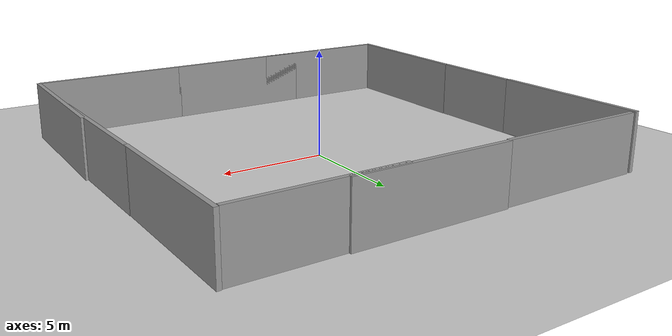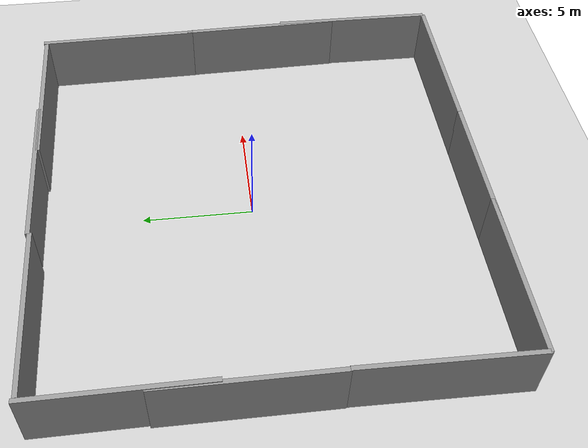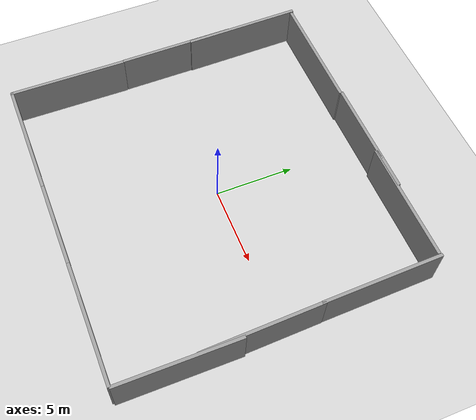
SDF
<sdf version="1.4">
 <world name="default">
  <model name="ground_plane">
   <static>1</static>
   <link name="link">
    <collision name="collision">
     <geometry><plane><normal>0 0 1</normal><size>100 100</size></plane></geometry>
     <surface><friction><ode><mu>100</mu><mu2>50</mu2></ode></friction></surface>
    </collision>
    <visual name="visual">
     <cast_shadows>0</cast_shadows>
     <geometry><plane><normal>0 0 1</normal><size>100 100</size></plane></geometry>
     <material>
      <script><uri>file://media/materials/scripts/gazebo.material</uri><name>Gazebo/Grey</name></script>
     </material>
    </visual>
    <velocity_decay><linear>0</linear><angular>0</angular></velocity_decay>
   </link>
  </model>
  <light name="sun" type="directional">
   <pose>0 0 10 0 -0 0</pose>
   <diffuse>0.8 0.8 0.8 1</diffuse>
   <specular>0.2 0.2 0.2 1</specular>
   <attenuation>
    <range>1000</range>
    <constant>0.9</constant>
    <linear>0.01</linear>
    <quadratic>0.001</quadratic>
   </attenuation>
   <direction>-0.5 0.1 -0.9</direction>
  </light>
  <physics type="ode">
   <max_step_size>0.001</max_step_size>
   <real_time_factor>1</real_time_factor>
   <real_time_update_rate>1000</real_time_update_rate>
   <gravity>0 0 -9.8</gravity>
  </physics>
  <scene><ambient>0.4 0.4 0.4 1</ambient><background>0.7 0.7 0.7 1</background><shadows>1</shadows></scene>
  <spherical_coordinates>
   <surface_model>EARTH_WGS84</surface_model>
   <latitude_deg>0</latitude_deg>
   <longitude_deg>0</longitude_deg>
   <elevation>0</elevation>
   <heading_deg>0</heading_deg>
  </spherical_coordinates>
  <model name="grey_wall">
   <static>1</static>
   <link name="link">
    <pose>0 0 1.4 0 -0 0</pose>
    <collision name="collision"><geometry><box><size>7.5 0.2 2.8</size></box></geometry></collision>
    <visual name="visual">
     <cast_shadows>0</cast_shadows>
     <geometry><box><size>7.5 0.2 2.8</size></box></geometry>
     <material>
      <script>
       <uri>model://grey_wall/materials/scripts</uri>
       <uri>model://grey_wall/materials/textures</uri>
       <name>vrc/grey_wall</name>
      </script>
     </material>
    </visual>
    <velocity_decay><linear>0</linear><angular>0</angular></velocity_decay>
   </link>
   <pose>-6.26999 9.4268 0 0 -0 0</pose>
  </model>
  <model name="grey_wall_0">
   <static>1</static>
   <link name="link">
    <pose>0 0 1.4 0 -0 0</pose>
    <collision name="collision"><geometry><box><size>7.5 0.2 2.8</size></box></geometry></collision>
    <visual name="visual">
     <cast_shadows>0</cast_shadows>
     <geometry><box><size>7.5 0.2 2.8</size></box></geometry>
     <material>
      <script>
       <uri>model://grey_wall/materials/scripts</uri>
       <uri>model://grey_wall/materials/textures</uri>
       <name>vrc/grey_wall</name>
      </script>
     </material>
    </visual>
    <velocity_decay><linear>0</linear><angular>0</angular></velocity_decay>
   </link>
   <pose>1.18437 9.51118 0 0 -0 0</pose>
  </model>
  <model name="grey_wall_1">
   <static>1</static>
   <link name="link">
    <pose>0 0 1.4 0 -0 0</pose>
    <collision name="collision"><geometry><box><size>7.5 0.2 2.8</size></box></geometry></collision>
    <visual name="visual">
     <cast_shadows>0</cast_shadows>
     <geometry><box><size>7.5 0.2 2.8</size></box></geometry>
     <material>
      <script>
       <uri>model://grey_wall/materials/scripts</uri>
       <uri>model://grey_wall/materials/textures</uri>
       <name>vrc/grey_wall</name>
      </script>
     </material>
    </visual>
    <velocity_decay><linear>0</linear><angular>0</angular></velocity_decay>
   </link>
   <pose>6 9.41144 0 0 -0 0</pose>
  </model>
  <model name="grey_wall_2">
   <static>1</static>
   <link name="link">
    <pose>0 0 1.4 0 -0 0</pose>
    <collision name="collision"><geometry><box><size>7.5 0.2 2.8</size></box></geometry></collision>
    <visual name="visual">
     <cast_shadows>0</cast_shadows>
     <geometry><box><size>7.5 0.2 2.8</size></box></geometry>
     <material>
      <script>
       <uri>model://grey_wall/materials/scripts</uri>
       <uri>model://grey_wall/materials/textures</uri>
       <name>vrc/grey_wall</name>
      </script>
     </material>
    </visual>
    <velocity_decay><linear>0</linear><angular>0</angular></velocity_decay>
   </link>
   <pose>9.93231 5.80288 0 0 -0 1.58792</pose>
  </model>
  <model name="grey_wall_3">
   <static>1</static>
   <link name="link">
    <pose>0 0 1.4 0 -0 0</pose>
    <collision name="collision"><geometry><box><size>7.5 0.2 2.8</size></box></geometry></collision>
    <visual name="visual">
     <cast_shadows>0</cast_shadows>
     <geometry><box><size>7.5 0.2 2.8</size></box></geometry>
     <material>
      <script>
       <uri>model://grey_wall/materials/scripts</uri>
       <uri>model://grey_wall/materials/textures</uri>
       <name>vrc/grey_wall</name>
      </script>
     </material>
    </visual>
    <velocity_decay><linear>0</linear><angular>0</angular></velocity_decay>
   </link>
   <pose>10.0961 -1.45592 0 0 0 -1.54788</pose>
  </model>
  <model name="grey_wall_4">
   <static>1</static>
   <link name="link">
    <pose>0 0 1.4 0 -0 0</pose>
    <collision name="collision"><geometry><box><size>7.5 0.2 2.8</size></box></geometry></collision>
    <visual name="visual">
     <cast_shadows>0</cast_shadows>
     <geometry><box><size>7.5 0.2 2.8</size></box></geometry>
     <material>
      <script>
       <uri>model://grey_wall/materials/scripts</uri>
       <uri>model://grey_wall/materials/textures</uri>
       <name>vrc/grey_wall</name>
      </script>
     </material>
    </visual>
    <velocity_decay><linear>0</linear><angular>0</angular></velocity_decay>
   </link>
   <pose>10.2077 -6.25284 0 0 -0 1.56288</pose>
  </model>
  <model name="grey_wall_5">
   <static>1</static>
   <link name="link">
    <pose>0 0 1.4 0 -0 0</pose>
    <collision name="collision"><geometry><box><size>7.5 0.2 2.8</size></box></geometry></collision>
    <visual name="visual">
     <cast_shadows>0</cast_shadows>
     <geometry><box><size>7.5 0.2 2.8</size></box></geometry>
     <material>
      <script>
       <uri>model://grey_wall/materials/scripts</uri>
       <uri>model://grey_wall/materials/textures</uri>
       <name>vrc/grey_wall</name>
      </script>
     </material>
    </visual>
    <velocity_decay><linear>0</linear><angular>0</angular></velocity_decay>
   </link>
   <pose>6.41646 -10 0 0 -0 0</pose>
  </model>
  <model name="grey_wall_6">
   <static>1</static>
   <link name="link">
    <pose>0 0 1.4 0 -0 0</pose>
    <collision name="collision"><geometry><box><size>7.5 0.2 2.8</size></box></geometry></collision>
    <visual name="visual">
     <cast_shadows>0</cast_shadows>
     <geometry><box><size>7.5 0.2 2.8</size></box></geometry>
     <material>
      <script>
       <uri>model://grey_wall/materials/scripts</uri>
       <uri>model://grey_wall/materials/textures</uri>
       <name>vrc/grey_wall</name>
      </script>
     </material>
    </visual>
    <velocity_decay><linear>0</linear><angular>0</angular></velocity_decay>
   </link>
   <pose>-1 -10 0 0 -0 0</pose>
  </model>
  <model name="grey_wall_7">
   <static>1</static>
   <link name="link">
    <pose>0 0 1.4 0 -0 0</pose>
    <collision name="collision"><geometry><box><size>7.5 0.2 2.8</size></box></geometry></collision>
    <visual name="visual">
     <cast_shadows>0</cast_shadows>
     <geometry><box><size>7.5 0.2 2.8</size></box></geometry>
     <material>
      <script>
       <uri>model://grey_wall/materials/scripts</uri>
       <uri>model://grey_wall/materials/textures</uri>
       <name>vrc/grey_wall</name>
      </script>
     </material>
    </visual>
    <velocity_decay><linear>0</linear><angular>0</angular></velocity_decay>
   </link>
   <pose>-6.46754 -10 0 0 -0 0</pose>
  </model>
  <model name="grey_wall_8">
   <static>1</static>
   <link name="link">
    <pose>0 0 1.4 0 -0 0</pose>
    <collision name="collision"><geometry><box><size>7.5 0.2 2.8</size></box></geometry></collision>
    <visual name="visual">
     <cast_shadows>0</cast_shadows>
     <geometry><box><size>7.5 0.2 2.8</size></box></geometry>
     <material>
      <script>
       <uri>model://grey_wall/materials/scripts</uri>
       <uri>model://grey_wall/materials/textures</uri>
       <name>vrc/grey_wall</name>
      </script>
     </material>
    </visual>
    <velocity_decay><linear>0</linear><angular>0</angular></velocity_decay>
   </link>
   <pose>-10.1405 -6.30794 0 0 0 -1.58108</pose>
  </model>
  <model name="grey_wall_9">
   <static>1</static>
   <link name="link">
    <pose>0 0 1.4 0 -0 0</pose>
    <collision name="collision"><geometry><box><size>7.5 0.2 2.8</size></box></geometry></collision>
    <visual name="visual">
     <cast_shadows>0</cast_shadows>
     <geometry><box><size>7.5 0.2 2.8</size></box></geometry>
     <material>
      <script>
       <uri>model://grey_wall/materials/scripts</uri>
       <uri>model://grey_wall/materials/textures</uri>
       <name>vrc/grey_wall</name>
      </script>
     </material>
    </visual>
    <velocity_decay><linear>0</linear><angular>0</angular></velocity_decay>
   </link>
   <pose>-10.1448 1.14968 0 0 0 -1.56687</pose>
  </model>
  <model name="grey_wall_10">
   <static>1</static>
   <link name="link">
    <pose>0 0 1.4 0 -0 0</pose>
    <collision name="collision"><geometry><box><size>7.5 0.2 2.8</size></box></geometry></collision>
    <visual name="visual">
     <cast_shadows>0</cast_shadows>
     <geometry><box><size>7.5 0.2 2.8</size></box></geometry>
     <material>
      <script>
       <uri>model://grey_wall/materials/scripts</uri>
       <uri>model://grey_wall/materials/textures</uri>
       <name>vrc/grey_wall</name>
      </script>
     </material>
    </visual>
    <velocity_decay><linear>0</linear><angular>0</angular></velocity_decay>
   </link>
   <pose>-10.1099 5.83459 0.044835 0 0 -1.55969</pose>
  </model>
 </world>
</sdf>
